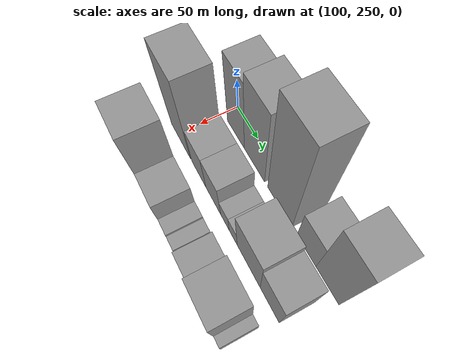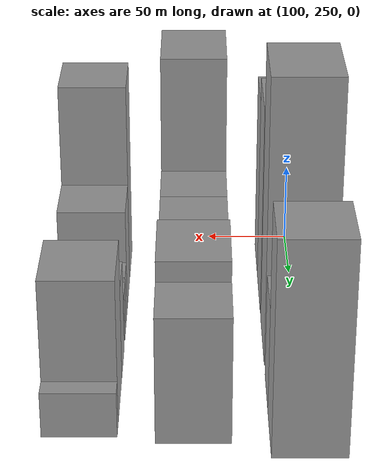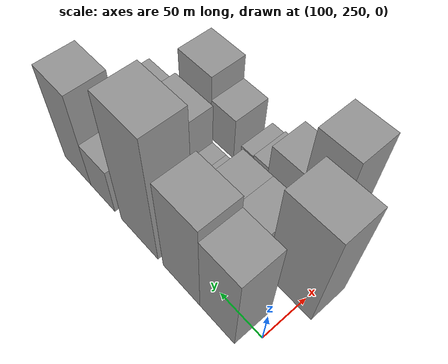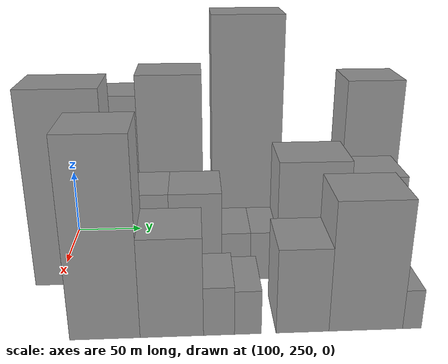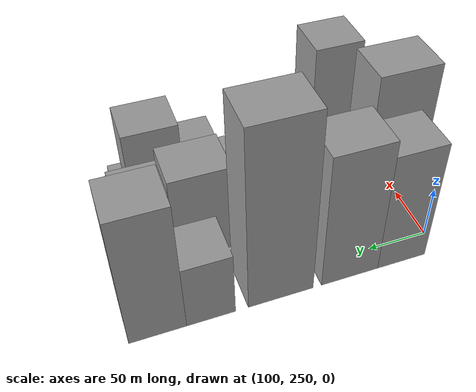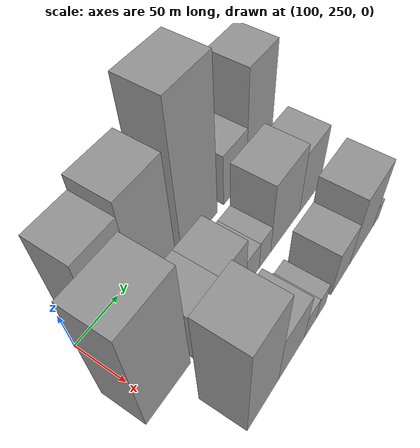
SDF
<sdf version="1.6">
 <world name="default">
  <model name="building_37">
   <static>1</static>
   <pose>100.0000 282.1764 0 0.000000 0.000000 0.000000</pose>
   <link name="link">
    <pose>0 0 58.50 0 0 0</pose>
    <collision name="collision"><geometry><box><size>40.0000 41.7540 117.0000</size></box></geometry></collision>
    <visual name="visual">
     <cast_shadows>0</cast_shadows>
     <geometry><box><size>40.0000 41.7540 117.0000</size></box></geometry>
     <material>
      <script>
       <uri>model://grey_wall/materials/scripts</uri>
       <uri>model://grey_wall/materials/textures</uri>
       <name>vrc/grey_wall</name>
      </script>
     </material>
    </visual>
   </link>
  </model>
  <model name="building_38">
   <static>1</static>
   <pose>100.0000 327.0272 0 0.000000 0.000000 0.000000</pose>
   <link name="link">
    <pose>0 0 66.00 0 0 0</pose>
    <collision name="collision"><geometry><box><size>40.0000 47.9475 132.0000</size></box></geometry></collision>
    <visual name="visual">
     <cast_shadows>0</cast_shadows>
     <geometry><box><size>40.0000 47.9475 132.0000</size></box></geometry>
     <material>
      <script>
       <uri>model://grey_wall/materials/scripts</uri>
       <uri>model://grey_wall/materials/textures</uri>
       <name>vrc/grey_wall</name>
      </script>
     </material>
    </visual>
   </link>
  </model>
  <model name="building_39">
   <static>1</static>
   <pose>100.0000 384.1953 0 0.000000 0.000000 0.000000</pose>
   <link name="link">
    <pose>0 0 87.00 0 0 0</pose>
    <collision name="collision"><geometry><box><size>40.0000 52.3887 174.0000</size></box></geometry></collision>
    <visual name="visual">
     <cast_shadows>0</cast_shadows>
     <geometry><box><size>40.0000 52.3887 174.0000</size></box></geometry>
     <material>
      <script>
       <uri>model://grey_wall/materials/scripts</uri>
       <uri>model://grey_wall/materials/textures</uri>
       <name>vrc/grey_wall</name>
      </script>
     </material>
    </visual>
   </link>
  </model>
  <model name="building_40">
   <static>1</static>
   <pose>100.0000 439.1417 0 0.000000 0.000000 0.000000</pose>
   <link name="link">
    <pose>0 0 31.50 0 0 0</pose>
    <collision name="collision"><geometry><box><size>40.0000 37.5041 63.0000</size></box></geometry></collision>
    <visual name="visual">
     <cast_shadows>0</cast_shadows>
     <geometry><box><size>40.0000 37.5041 63.0000</size></box></geometry>
     <material>
      <script>
       <uri>model://grey_wall/materials/scripts</uri>
       <uri>model://grey_wall/materials/textures</uri>
       <name>vrc/grey_wall</name>
      </script>
     </material>
    </visual>
   </link>
  </model>
  <model name="building_41">
   <static>1</static>
   <pose>100.0000 479.2729 0 0.000000 0.000000 0.000000</pose>
   <link name="link">
    <pose>0 0 63.00 0 0 0</pose>
    <collision name="collision"><geometry><box><size>40.0000 42.7582 126.0000</size></box></geometry></collision>
    <visual name="visual">
     <cast_shadows>0</cast_shadows>
     <geometry><box><size>40.0000 42.7582 126.0000</size></box></geometry>
     <material>
      <script>
       <uri>model://grey_wall/materials/scripts</uri>
       <uri>model://grey_wall/materials/textures</uri>
       <name>vrc/grey_wall</name>
      </script>
     </material>
    </visual>
   </link>
  </model>
  <model name="building_85">
   <static>1</static>
   <pose>160.0000 260.7023 0 0.000000 0.000000 0.000000</pose>
   <link name="link">
    <pose>0 0 69.00 0 0 0</pose>
    <collision name="collision"><geometry><box><size>40.0000 52.0912 138.0000</size></box></geometry></collision>
    <visual name="visual">
     <cast_shadows>0</cast_shadows>
     <geometry><box><size>40.0000 52.0912 138.0000</size></box></geometry>
     <material>
      <script>
       <uri>model://grey_wall/materials/scripts</uri>
       <uri>model://grey_wall/materials/textures</uri>
       <name>vrc/grey_wall</name>
      </script>
     </material>
    </visual>
   </link>
  </model>
  <model name="building_86">
   <static>1</static>
   <pose>160.0000 308.9258 0 0.000000 0.000000 0.000000</pose>
   <link name="link">
    <pose>0 0 33.00 0 0 0</pose>
    <collision name="collision"><geometry><box><size>40.0000 36.3558 66.0000</size></box></geometry></collision>
    <visual name="visual">
     <cast_shadows>0</cast_shadows>
     <geometry><box><size>40.0000 36.3558 66.0000</size></box></geometry>
     <material>
      <script>
       <uri>model://grey_wall/materials/scripts</uri>
       <uri>model://grey_wall/materials/textures</uri>
       <name>vrc/grey_wall</name>
      </script>
     </material>
    </visual>
   </link>
  </model>
  <model name="building_87">
   <static>1</static>
   <pose>160.0000 344.8626 0 0.000000 0.000000 0.000000</pose>
   <link name="link">
    <pose>0 0 33.00 0 0 0</pose>
    <collision name="collision"><geometry><box><size>40.0000 35.5179 66.0000</size></box></geometry></collision>
    <visual name="visual">
     <cast_shadows>0</cast_shadows>
     <geometry><box><size>40.0000 35.5179 66.0000</size></box></geometry>
     <material>
      <script>
       <uri>model://grey_wall/materials/scripts</uri>
       <uri>model://grey_wall/materials/textures</uri>
       <name>vrc/grey_wall</name>
      </script>
     </material>
    </visual>
   </link>
  </model>
  <model name="building_88">
   <static>1</static>
   <pose>160.0000 372.4693 0 0.000000 0.000000 0.000000</pose>
   <link name="link">
    <pose>0 0 18.00 0 0 0</pose>
    <collision name="collision"><geometry><box><size>40.0000 19.6953 36.0000</size></box></geometry></collision>
    <visual name="visual">
     <cast_shadows>0</cast_shadows>
     <geometry><box><size>40.0000 19.6953 36.0000</size></box></geometry>
     <material>
      <script>
       <uri>model://grey_wall/materials/scripts</uri>
       <uri>model://grey_wall/materials/textures</uri>
       <name>vrc/grey_wall</name>
      </script>
     </material>
    </visual>
   </link>
  </model>
  <model name="building_89">
   <static>1</static>
   <pose>160.0000 391.3620 0 0.000000 0.000000 0.000000</pose>
   <link name="link">
    <pose>0 0 18.00 0 0 0</pose>
    <collision name="collision"><geometry><box><size>40.0000 18.0901 36.0000</size></box></geometry></collision>
    <visual name="visual">
     <cast_shadows>0</cast_shadows>
     <geometry><box><size>40.0000 18.0901 36.0000</size></box></geometry>
     <material>
      <script>
       <uri>model://grey_wall/materials/scripts</uri>
       <uri>model://grey_wall/materials/textures</uri>
       <name>vrc/grey_wall</name>
      </script>
     </material>
    </visual>
   </link>
  </model>
  <model name="building_90">
   <static>1</static>
   <pose>160.0000 424.9214 0 0.000000 0.000000 0.000000</pose>
   <link name="link">
    <pose>0 0 43.50 0 0 0</pose>
    <collision name="collision"><geometry><box><size>40.0000 49.0287 87.0000</size></box></geometry></collision>
    <visual name="visual">
     <cast_shadows>0</cast_shadows>
     <geometry><box><size>40.0000 49.0287 87.0000</size></box></geometry>
     <material>
      <script>
       <uri>model://grey_wall/materials/scripts</uri>
       <uri>model://grey_wall/materials/textures</uri>
       <name>vrc/grey_wall</name>
      </script>
     </material>
    </visual>
   </link>
  </model>
  <model name="building_91">
   <static>1</static>
   <pose>160.0000 468.4350 0 0.000000 0.000000 0.000000</pose>
   <link name="link">
    <pose>0 0 37.50 0 0 0</pose>
    <collision name="collision"><geometry><box><size>40.0000 37.9985 75.0000</size></box></geometry></collision>
    <visual name="visual">
     <cast_shadows>0</cast_shadows>
     <geometry><box><size>40.0000 37.9985 75.0000</size></box></geometry>
     <material>
      <script>
       <uri>model://grey_wall/materials/scripts</uri>
       <uri>model://grey_wall/materials/textures</uri>
       <name>vrc/grey_wall</name>
      </script>
     </material>
    </visual>
   </link>
  </model>
  <model name="building_137">
   <static>1</static>
   <pose>220.0000 289.8117 0 0.000000 0.000000 0.000000</pose>
   <link name="link">
    <pose>0 0 64.50 0 0 0</pose>
    <collision name="collision"><geometry><box><size>40.0000 41.7000 129.0000</size></box></geometry></collision>
    <visual name="visual">
     <cast_shadows>0</cast_shadows>
     <geometry><box><size>40.0000 41.7000 129.0000</size></box></geometry>
     <material>
      <script>
       <uri>model://grey_wall/materials/scripts</uri>
       <uri>model://grey_wall/materials/textures</uri>
       <name>vrc/grey_wall</name>
      </script>
     </material>
    </visual>
   </link>
  </model>
  <model name="building_138">
   <static>1</static>
   <pose>220.0000 329.6262 0 0.000000 0.000000 0.000000</pose>
   <link name="link">
    <pose>0 0 33.00 0 0 0</pose>
    <collision name="collision"><geometry><box><size>40.0000 37.9290 66.0000</size></box></geometry></collision>
    <visual name="visual">
     <cast_shadows>0</cast_shadows>
     <geometry><box><size>40.0000 37.9290 66.0000</size></box></geometry>
     <material>
      <script>
       <uri>model://grey_wall/materials/scripts</uri>
       <uri>model://grey_wall/materials/textures</uri>
       <name>vrc/grey_wall</name>
      </script>
     </material>
    </visual>
   </link>
  </model>
  <model name="building_139">
   <static>1</static>
   <pose>220.0000 357.9140 0 0.000000 0.000000 0.000000</pose>
   <link name="link">
    <pose>0 0 16.50 0 0 0</pose>
    <collision name="collision"><geometry><box><size>40.0000 18.6467 33.0000</size></box></geometry></collision>
    <visual name="visual">
     <cast_shadows>0</cast_shadows>
     <geometry><box><size>40.0000 18.6467 33.0000</size></box></geometry>
     <material>
      <script>
       <uri>model://grey_wall/materials/scripts</uri>
       <uri>model://grey_wall/materials/textures</uri>
       <name>vrc/grey_wall</name>
      </script>
     </material>
    </visual>
   </link>
  </model>
  <model name="building_140">
   <static>1</static>
   <pose>220.0000 375.3667 0 0.000000 0.000000 0.000000</pose>
   <link name="link">
    <pose>0 0 15.00 0 0 0</pose>
    <collision name="collision"><geometry><box><size>40.0000 16.2587 30.0000</size></box></geometry></collision>
    <visual name="visual">
     <cast_shadows>0</cast_shadows>
     <geometry><box><size>40.0000 16.2587 30.0000</size></box></geometry>
     <material>
      <script>
       <uri>model://grey_wall/materials/scripts</uri>
       <uri>model://grey_wall/materials/textures</uri>
       <name>vrc/grey_wall</name>
      </script>
     </material>
    </visual>
   </link>
  </model>
  <model name="building_141">
   <static>1</static>
   <pose>220.0000 408.6544 0 0.000000 0.000000 0.000000</pose>
   <link name="link">
    <pose>0 0 28.50 0 0 0</pose>
    <collision name="collision"><geometry><box><size>40.0000 32.3168 57.0000</size></box></geometry></collision>
    <visual name="visual">
     <cast_shadows>0</cast_shadows>
     <geometry><box><size>40.0000 32.3168 57.0000</size></box></geometry>
     <material>
      <script>
       <uri>model://grey_wall/materials/scripts</uri>
       <uri>model://grey_wall/materials/textures</uri>
       <name>vrc/grey_wall</name>
      </script>
     </material>
    </visual>
   </link>
  </model>
  <model name="building_142">
   <static>1</static>
   <pose>220.0000 447.5748 0 0.000000 0.000000 0.000000</pose>
   <link name="link">
    <pose>0 0 43.50 0 0 0</pose>
    <collision name="collision"><geometry><box><size>40.0000 45.5239 87.0000</size></box></geometry></collision>
    <visual name="visual">
     <cast_shadows>0</cast_shadows>
     <geometry><box><size>40.0000 45.5239 87.0000</size></box></geometry>
     <material>
      <script>
       <uri>model://grey_wall/materials/scripts</uri>
       <uri>model://grey_wall/materials/textures</uri>
       <name>vrc/grey_wall</name>
      </script>
     </material>
    </visual>
   </link>
  </model>
  <model name="building_143">
   <static>1</static>
   <pose>220.0000 476.1531 0 0.000000 0.000000 0.000000</pose>
   <link name="link">
    <pose>0 0 13.50 0 0 0</pose>
    <collision name="collision"><geometry><box><size>40.0000 11.6327 27.0000</size></box></geometry></collision>
    <visual name="visual">
     <cast_shadows>0</cast_shadows>
     <geometry><box><size>40.0000 11.6327 27.0000</size></box></geometry>
     <material>
      <script>
       <uri>model://grey_wall/materials/scripts</uri>
       <uri>model://grey_wall/materials/textures</uri>
       <name>vrc/grey_wall</name>
      </script>
     </material>
    </visual>
   </link>
  </model>
 </world>
</sdf>
